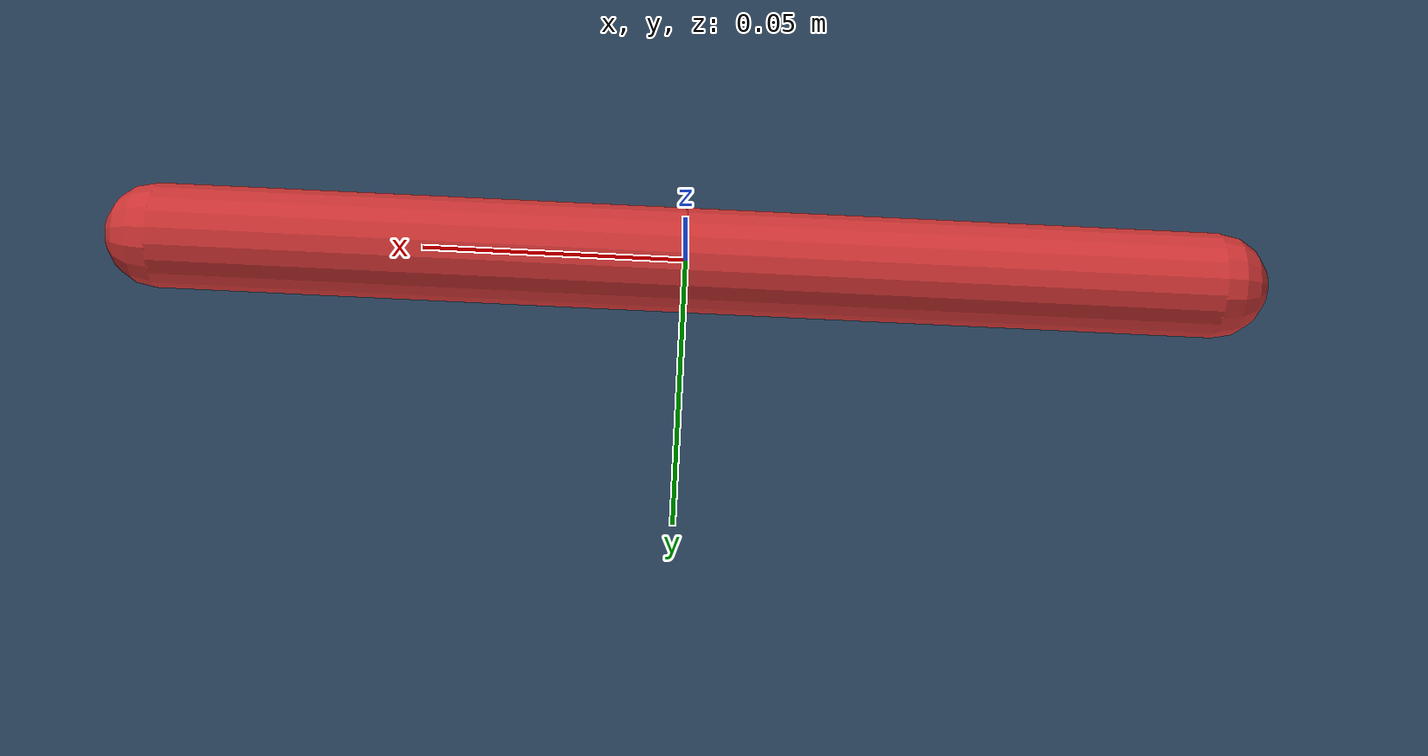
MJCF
<mujoco>
  <option timestep="0.001" gravity="0 0 -9.81">
  </option>

  <asset>
    <texture type="2d" name="groundplane" builtin="checker" mark="edge" rgb1="0.2 0.3 0.4" rgb2="0.1 0.2 0.3" markrgb="0.8 0.8 0.8" width="300" height="300"/>
    <material name="groundplane" texture="groundplane" texuniform="true" texrepeat="5 5" reflectance="0.2"/>
  </asset>

  <worldbody>
    <light pos="0 0 1.5" dir="0 0 -1" directional="true"/>

    <geom name="floor"
          size="0 0 0.05"
          type="plane"
          material="groundplane"
          friction="0.5 0 0"
          condim="6"
          solref="-100000 -1000"
          priority="1"
    />

    <body name="bar">
      <joint name="slide_x" type="slide" axis="1 0 0" />
      <joint name="slide_z" type="slide" axis="0 0 1" />
      <joint name="rotate_y" type="hinge" axis="0 1 0" />

      <inertial pos="0 0 0" mass="0.5" diaginertia="1e-5 0.00166667 0.00166667" />

      <geom name="bar_upper"
            type="capsule"
            fromto="-0.1 0 0 0 0 0"
            size="0.01"
            rgba="0.8 0.2 0.2 1"
            contype="0"
            conaffinity="0" />

      <geom name="bar_lower"
            type="capsule"
            fromto="0 0 0 0.1 0 0"
            size="0.01"
            rgba="0.8 0.2 0.2 1" />
    </body>
  </worldbody>

  <keyframe>
    <key name="init"
         qpos="0 0.3 0.7854"
         qvel="0 0 0" />
  </keyframe>

</mujoco>
